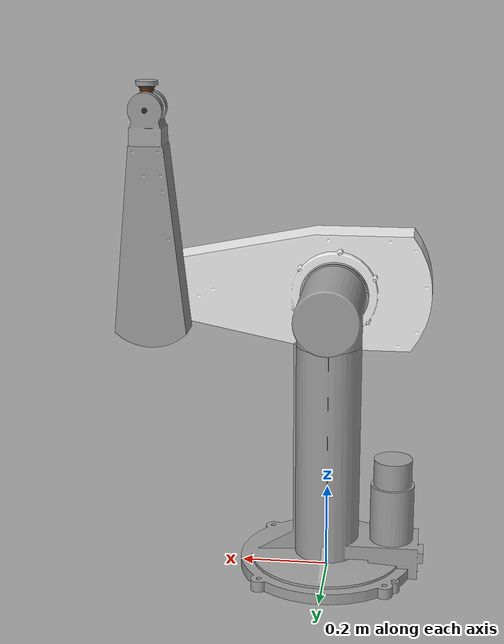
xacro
<?xml version="1.0"?>
<robot name="Puma560" xmlns:xacro="http://www.ros.org/wiki/xacro">

  <xacro:macro name="puma560_link_geometry" params="link_num">
    <mesh filename="package://puma560_description/meshes/puma560_link${link_num}.dae" scale="1.0 1.0 1.0"/>
  </xacro:macro>
  <xacro:macro name="puma560_link_collision" params="link_num">
    <mesh filename="package://puma560_description/meshes/puma560_collision${link_num}.dae" scale="1.0 1.0 1.0"/>
  </xacro:macro>

  <xacro:property name="M_PI" value="3.14159265"/>

  <xacro:property name="l1_1" value="0.54864"/>
  <xacro:property name="l2_1" value="0.07493"/>
  <xacro:property name="l2_2" value="0.14224"/>
  <xacro:property name="l3_2" value="0.0254"/>
  <xacro:property name="l3_3" value="0.4318"/>
  <xacro:property name="l3_3" value="0.4318"/>
  <xacro:property name="l4_3" value="0.0"/>
  <xacro:property name="l4_4z" value="0.35179"/>
  <xacro:property name="l4_4y" value="-0.0381"/>
  <xacro:property name="l5_4" value="0.02032"/>
  <xacro:property name="l5_5" value="0.059979"/>
  <xacro:property name="l6_5" value="0.0"/>
  <xacro:property name="l6_6" value="0.05334"/>
  <xacro:property name="l7_6" value="0.0"/>

  <link name="link1">
    <visual>
      <geometry>
        <xacro:puma560_link_geometry link_num="1"/>
      </geometry>
      <origin rpy="0 0 0"/>
    </visual>
    <collision>
      <geometry>
        <xacro:puma560_link_collision link_num="1"/>
      </geometry>
      <origin rpy="0 0 0"/>
    </collision>
  </link>

  <link name="link2">
    <visual>
      <geometry>
        <xacro:puma560_link_geometry link_num="2"/>
      </geometry>
      <origin xyz="0 ${l2_1} 0" rpy="0 0 0"/><!-- X-forward, Y-Up, Z-left -->
    </visual>
    <collision>
      <geometry>
        <xacro:puma560_link_collision link_num="2"/>
      </geometry>
      <origin xyz="0 ${l2_1} 0" rpy="0 0 0"/>
    </collision>
  </link>

  <joint name="j1" type="revolute">
    <parent link="link1"/>
    <child link="link2"/>
    <origin xyz="0 0 ${l1_1}" rpy="${M_PI/2} 0 0"/>
    <axis xyz="0 1 0"/> <!-- This is descibed in child frame -->
    <limit effort="1000.0" lower="${-M_PI}" upper="${M_PI}" velocity="0"/>
  </joint>

  <link name="link3">
    <visual>
      <geometry>
        <xacro:puma560_link_geometry link_num="3"/>
      </geometry>
      <origin xyz="0 0 ${l3_2}"/><!-- X-forward, Y-Up, Z-right -->
    </visual>
    <collision>
      <geometry>
        <xacro:puma560_link_collision link_num="3"/>
      </geometry>
      <origin xyz="0 0 ${l3_2}"/>
    </collision>
  </link>

  <joint name="j2" type="revolute">
    <parent link="link2"/>
    <child link="link3"/>
    <origin xyz="0 ${l2_1} ${l2_2}" rpy="0 0 0"/><!-- X-forward, Y-Up, Z-right -->
    <axis xyz="0 0 1"/> <!-- This is descibed in child frame -->
    <limit effort="1000.0" lower="${-M_PI/2}" upper="${M_PI/2}" velocity="0"/>
  </joint>

  <link name="link4">
    <visual>
      <geometry>
        <xacro:puma560_link_geometry link_num="4"/>
      </geometry>
      <origin xyz="0 0 ${l4_3}" rpy="0 0 0"/><!-- X-Up, Y-Back, Z-right -->
    </visual>
    <collision>
      <geometry>
        <xacro:puma560_link_collision link_num="4"/>
      </geometry>
      <origin xyz="0 0 ${l4_3}" rpy="0 0 0"/>
    </collision>
  </link>

  <joint name="j3" type="revolute">
    <parent link="link3"/>
    <child link="link4"/>
    <origin xyz="${l3_3} 0 ${l3_2}" rpy="0 0 ${M_PI/2}"/><!-- X-forward, Y-Up, Z-right -->
    <axis xyz="0 0 1"/> <!-- This is descibed in child frame -->
    <limit effort="1000.0" lower="${-M_PI/2}" upper="${M_PI/2}" velocity="0"/>
  </joint>

  <link name="link5">
    <visual>
      <geometry>
        <xacro:puma560_link_geometry link_num="5"/>
      </geometry>
      <origin xyz="0 0 ${l5_4}" rpy="0 0 0"/><!-- X-back, Y-right, Z-up -->
    </visual>
    <collision>
      <geometry>
        <xacro:puma560_link_collision link_num="5"/>
      </geometry>
      <origin xyz="0 0 ${l5_4}" rpy="0 0 0"/>
    </collision>
  </link>

  <joint name="j4" type="revolute">
    <parent link="link4"/>
    <child link="link5"/>
    <origin xyz="${l4_4z} 0 ${l4_4y + l4_3}" rpy="${-M_PI/2} 0 ${-M_PI/2}"/><!-- X-Up, Y-Back, Z-right -->
    <axis xyz="0 0 1"/>
    <limit effort="1000.0" lower="${-M_PI/2}" upper="${M_PI/2}" velocity="0"/>
  </joint>

  <link name="link6">
    <visual>
      <geometry>
        <xacro:puma560_link_geometry link_num="6"/>
      </geometry>
      <origin xyz="0 0 ${l6_5}" rpy="0 0 0"/><!-- X-back, Y-down, Z-right -->
    </visual>
    <collision>
      <geometry>
        <xacro:puma560_link_collision link_num="6"/>
      </geometry>
      <origin xyz="0 0 ${l6_5}" rpy="0 0 0"/>
    </collision>
  </link>

  <joint name="j5" type="revolute">
    <parent link="link5"/>
    <child link="link6"/>
    <origin xyz="0 0 ${l5_4 + l5_5}" rpy="${M_PI/2} 0 0"/><!-- X-back, Y-right, Z-up -->
    <axis xyz="0 0 1"/>
    <limit effort="1000.0" lower="${-M_PI/2}" upper="${M_PI/2}" velocity="0"/>
  </joint>

  <link name="link7">
    <visual>
      <geometry>
        <xacro:puma560_link_geometry link_num="7"/>
      </geometry>
      <origin xyz="0 0 ${l7_6}" rpy="0 0 0"/><!-- Z-up-->
    </visual>
    <collision>
      <geometry>
        <cylinder length="0.01016" radius="0.0254"/><!-- Simple collision for the end effector -->
      </geometry>
      <origin xyz="0 0 ${l7_6 + 0.00508}" rpy="0 0 0"/><!-- Z-up-->
    </collision>
  </link>

  <joint name="j6" type="revolute">
    <parent link="link6"/>
    <child link="link7"/>
    <origin xyz="0 ${l6_6 + l6_5} 0" rpy="${-M_PI/2} 0 0"/><!-- Y-up -->
    <axis xyz="0 0 1"/>
    <limit effort="1000.0" lower="${-M_PI/2}" upper="${M_PI/2}" velocity="0"/>
  </joint>

</robot>
